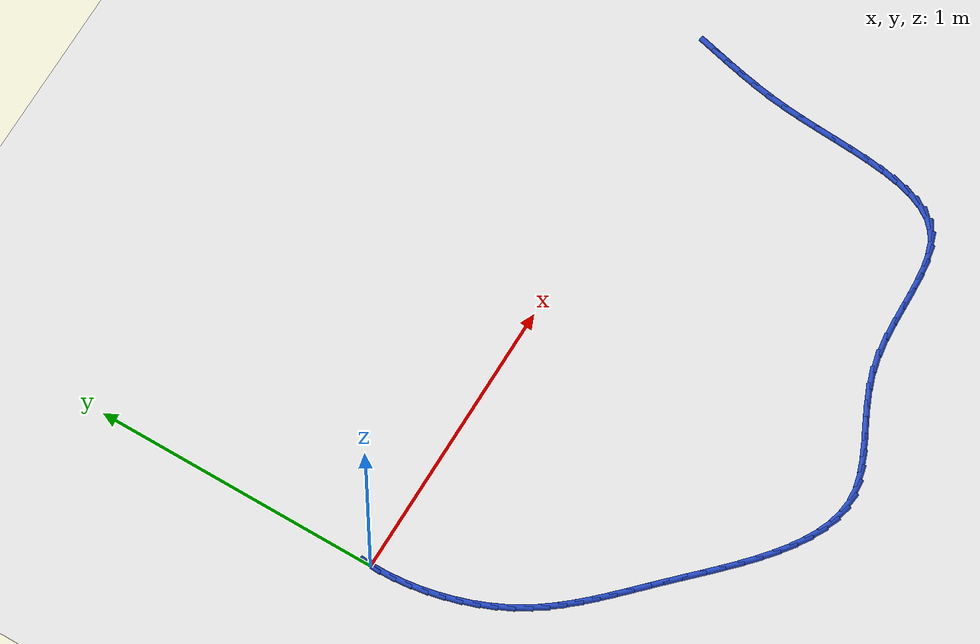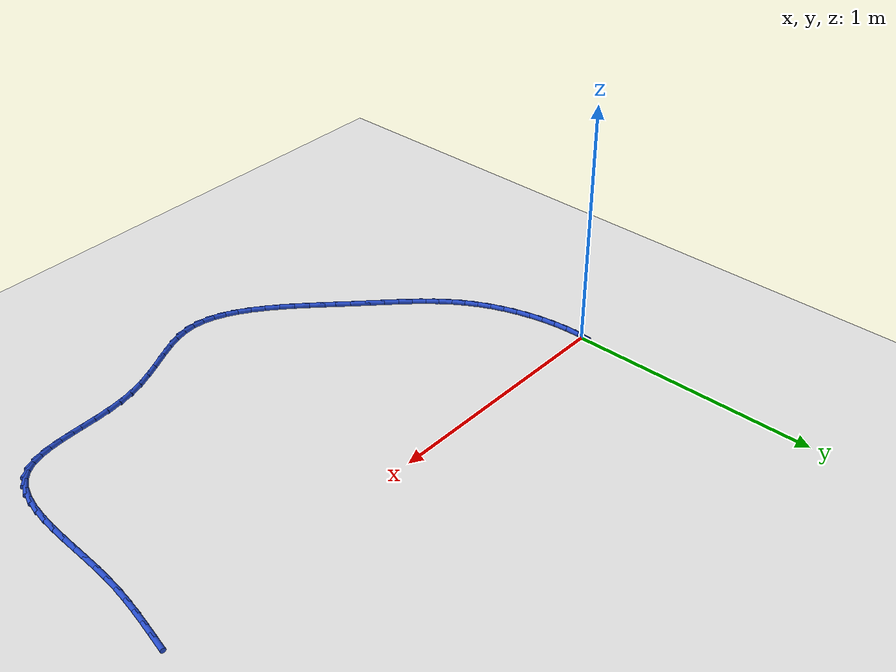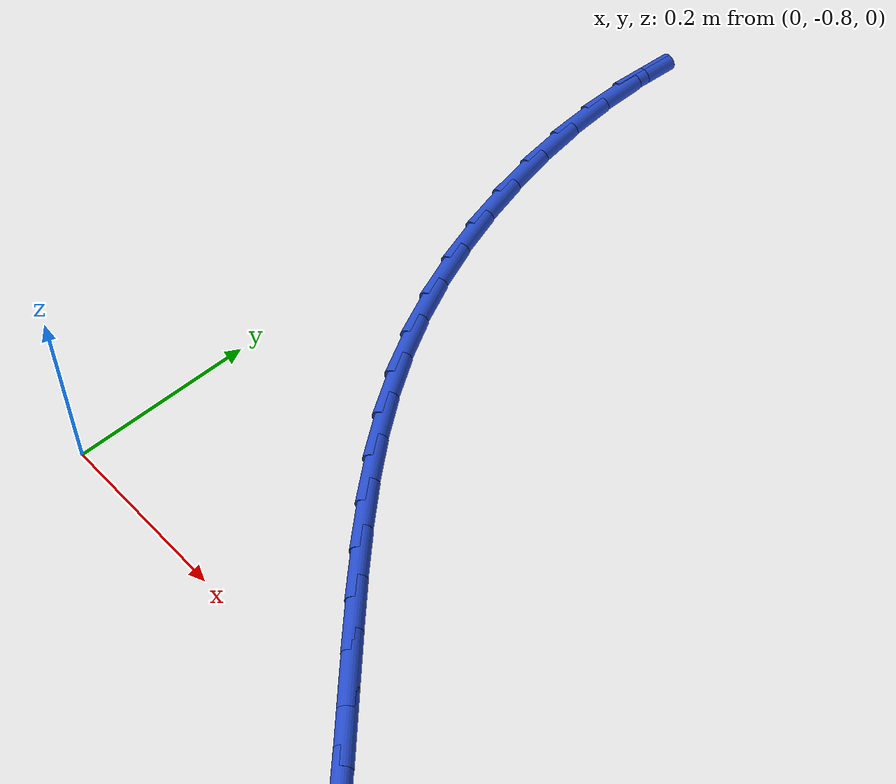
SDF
<sdf version="1.6">
 <world name="default">
  <model name="ground_plane">
   <static>1</static>
   <link name="link">
    <collision name="collision">
     <geometry><plane><normal>0 0 1</normal><size>100 100</size></plane></geometry>
     <surface><friction><ode><mu>100</mu><mu2>50</mu2></ode></friction></surface>
    </collision>
    <visual name="visual">
     <cast_shadows>0</cast_shadows>
     <geometry><plane><normal>0 0 1</normal><size>100 100</size></plane></geometry>
     <material>
      <script><uri>file://media/materials/scripts/gazebo.material</uri><name>Gazebo/WhiteGlow</name></script>
     </material>
    </visual>
   </link>
  </model>
  <model name="line">
   <link name="link_0">
    <pose>-3.469446951953614e-18 -1.1102230246251565e-16 0.01 0 1.57 1.5083237558012084</pose>
    <collision name="collision">
     <geometry><cylinder><radius>0.01</radius><length>0.08</length></cylinder></geometry>
    </collision>
    <visual name="visual">
     <material>
      <script><name>Gazebo/Blue</name><uri>file://media/materials/scripts/gazebo.material</uri></script>
     </material>
     <geometry><cylinder><radius>0.01</radius><length>0.08</length></cylinder></geometry>
    </visual>
   </link>
   <link name="link_66">
    <pose>2.0968382192380366 -0.0063056137642961765 0.01 0 1.57 1.3400797884857434</pose>
    <collision name="collision">
     <geometry><cylinder><radius>0.01</radius><length>0.08</length></cylinder></geometry>
    </collision>
    <visual name="visual">
     <material>
      <script><name>Gazebo/Blue</name><uri>file://media/materials/scripts/gazebo.material</uri></script>
     </material>
     <geometry><cylinder><radius>0.01</radius><length>0.08</length></cylinder></geometry>
    </visual>
   </link>
   <link name="link_67">
    <pose>2.084049963089782 -0.060747051341018196 0.01 0 1.57 1.3467853707199937</pose>
    <collision name="collision">
     <geometry><cylinder><radius>0.01</radius><length>0.08</length></cylinder></geometry>
    </collision>
    <visual name="visual">
     <material>
      <script><name>Gazebo/Blue</name><uri>file://media/materials/scripts/gazebo.material</uri></script>
     </material>
     <geometry><cylinder><radius>0.01</radius><length>0.08</length></cylinder></geometry>
    </visual>
   </link>
   <link name="link_68">
    <pose>2.071370664805585 -0.11639834334586663 0.01 0 1.57 1.3631032784898784</pose>
    <collision name="collision">
     <geometry><cylinder><radius>0.01</radius><length>0.08</length></cylinder></geometry>
    </collision>
    <visual name="visual">
     <material>
      <script><name>Gazebo/Blue</name><uri>file://media/materials/scripts/gazebo.material</uri></script>
     </material>
     <geometry><cylinder><radius>0.01</radius><length>0.08</length></cylinder></geometry>
    </visual>
   </link>
   <link name="link_69">
    <pose>2.0593467025145973 -0.1734564537996577 0.01 0 1.57 1.3883624178614888</pose>
    <collision name="collision">
     <geometry><cylinder><radius>0.01</radius><length>0.08</length></cylinder></geometry>
    </collision>
    <visual name="visual">
     <material>
      <script><name>Gazebo/Blue</name><uri>file://media/materials/scripts/gazebo.material</uri></script>
     </material>
     <geometry><cylinder><radius>0.01</radius><length>0.08</length></cylinder></geometry>
    </visual>
   </link>
   <link name="link_70">
    <pose>2.0485244543459693 -0.23211834672320728 0.01 0 1.57 1.421829386055727</pose>
    <collision name="collision">
     <geometry><cylinder><radius>0.01</radius><length>0.08</length></cylinder></geometry>
    </collision>
    <visual name="visual">
     <material>
      <script><name>Gazebo/Blue</name><uri>file://media/materials/scripts/gazebo.material</uri></script>
     </material>
     <geometry><cylinder><radius>0.01</radius><length>0.08</length></cylinder></geometry>
    </visual>
   </link>
   <link name="link_71">
    <pose>2.0394502984288554 -0.29258098613732914 0.01 0 1.57 1.4612700298648997</pose>
    <collision name="collision">
     <geometry><cylinder><radius>0.01</radius><length>0.08</length></cylinder></geometry>
    </collision>
    <visual name="visual">
     <material>
      <script><name>Gazebo/Blue</name><uri>file://media/materials/scripts/gazebo.material</uri></script>
     </material>
     <geometry><cylinder><radius>0.01</radius><length>0.08</length></cylinder></geometry>
    </visual>
   </link>
   <link name="link_72">
    <pose>2.032588858643657 -0.35497678857805803 0.01 0 1.57 1.4927425490563253</pose>
    <collision name="collision">
     <geometry><cylinder><radius>0.01</radius><length>0.08</length></cylinder></geometry>
    </collision>
    <visual name="visual">
     <material>
      <script><name>Gazebo/Blue</name><uri>file://media/materials/scripts/gazebo.material</uri></script>
     </material>
     <geometry><cylinder><radius>0.01</radius><length>0.08</length></cylinder></geometry>
    </visual>
   </link>
   <link name="link_73">
    <pose>2.0275970391784512 -0.4188004511314184 0.01 0 1.57 1.5098957581149568</pose>
    <collision name="collision">
     <geometry><cylinder><radius>0.01</radius><length>0.08</length></cylinder></geometry>
    </collision>
    <visual name="visual">
     <material>
      <script><name>Gazebo/Blue</name><uri>file://media/materials/scripts/gazebo.material</uri></script>
     </material>
     <geometry><cylinder><radius>0.01</radius><length>0.08</length></cylinder></geometry>
    </visual>
   </link>
   <link name="link_74">
    <pose>2.0236712450621086 -0.48318309268504717 0.01 0 1.57 1.5135962795925804</pose>
    <collision name="collision">
     <geometry><cylinder><radius>0.01</radius><length>0.08</length></cylinder></geometry>
    </collision>
    <visual name="visual">
     <material>
      <script><name>Gazebo/Blue</name><uri>file://media/materials/scripts/gazebo.material</uri></script>
     </material>
     <geometry><cylinder><radius>0.01</radius><length>0.08</length></cylinder></geometry>
    </visual>
   </link>
   <link name="link_75">
    <pose>2.0200025213651664 -0.5472516002752215 0.01 0 1.57 1.5037765643632066</pose>
    <collision name="collision">
     <geometry><cylinder><radius>0.01</radius><length>0.08</length></cylinder></geometry>
    </collision>
    <visual name="visual">
     <material>
      <script><name>Gazebo/Blue</name><uri>file://media/materials/scripts/gazebo.material</uri></script>
     </material>
     <geometry><cylinder><radius>0.01</radius><length>0.08</length></cylinder></geometry>
    </visual>
   </link>
   <link name="link_76">
    <pose>2.015781913158167 -0.6101328609382164 0.01 0 1.57 1.4792840625994632</pose>
    <collision name="collision">
     <geometry><cylinder><radius>0.01</radius><length>0.08</length></cylinder></geometry>
    </collision>
    <visual name="visual">
     <material>
      <script><name>Gazebo/Blue</name><uri>file://media/materials/scripts/gazebo.material</uri></script>
     </material>
     <geometry><cylinder><radius>0.01</radius><length>0.08</length></cylinder></geometry>
    </visual>
   </link>
   <link name="link_77">
    <pose>2.0102004655116503 -0.6709537617103095 0.01 0 1.57 1.4376861086203838</pose>
    <collision name="collision">
     <geometry><cylinder><radius>0.01</radius><length>0.08</length></cylinder></geometry>
    </collision>
    <visual name="visual">
     <material>
      <script><name>Gazebo/Blue</name><uri>file://media/materials/scripts/gazebo.material</uri></script>
     </material>
     <geometry><cylinder><radius>0.01</radius><length>0.08</length></cylinder></geometry>
    </visual>
   </link>
   <link name="link_78">
    <pose>2.0024492234961544 -0.728841189627778 0.01 0 1.57 1.3749334342237902</pose>
    <collision name="collision">
     <geometry><cylinder><radius>0.01</radius><length>0.08</length></cylinder></geometry>
    </collision>
    <visual name="visual">
     <material>
      <script><name>Gazebo/Blue</name><uri>file://media/materials/scripts/gazebo.material</uri></script>
     </material>
     <geometry><cylinder><radius>0.01</radius><length>0.08</length></cylinder></geometry>
    </visual>
   </link>
   <link name="link_79">
    <pose>1.9917192321822208 -0.7829220317268971 0.01 0 1.57 1.2849694473237803</pose>
    <collision name="collision">
     <geometry><cylinder><radius>0.01</radius><length>0.08</length></cylinder></geometry>
    </collision>
    <visual name="visual">
     <material>
      <script><name>Gazebo/Blue</name><uri>file://media/materials/scripts/gazebo.material</uri></script>
     </material>
     <geometry><cylinder><radius>0.01</radius><length>0.08</length></cylinder></geometry>
    </visual>
   </link>
   <link name="link_80">
    <pose>1.9772015366403886 -0.832323175043944 0.01 0 1.57 1.159713009865171</pose>
    <collision name="collision">
     <geometry><cylinder><radius>0.01</radius><length>0.08</length></cylinder></geometry>
    </collision>
    <visual name="visual">
     <material>
      <script><name>Gazebo/Blue</name><uri>file://media/materials/scripts/gazebo.material</uri></script>
     </material>
     <geometry><cylinder><radius>0.01</radius><length>0.08</length></cylinder></geometry>
    </visual>
   </link>
   <link name="link_81">
    <pose>1.9580871819411967 -0.8761715066151954 0.01 0 1.57 0.9907591489919769</pose>
    <collision name="collision">
     <geometry><cylinder><radius>0.01</radius><length>0.08</length></cylinder></geometry>
    </collision>
    <visual name="visual">
     <material>
      <script><name>Gazebo/Blue</name><uri>file://media/materials/scripts/gazebo.material</uri></script>
     </material>
     <geometry><cylinder><radius>0.01</radius><length>0.08</length></cylinder></geometry>
    </visual>
   </link>
   <link name="link_82">
    <pose>1.9335672131551862 -0.913593913476928 0.01 0 1.57 0.7753559503271344</pose>
    <collision name="collision">
     <geometry><cylinder><radius>0.01</radius><length>0.08</length></cylinder></geometry>
    </collision>
    <visual name="visual">
     <material>
      <script><name>Gazebo/Blue</name><uri>file://media/materials/scripts/gazebo.material</uri></script>
     </material>
     <geometry><cylinder><radius>0.01</radius><length>0.08</length></cylinder></geometry>
    </visual>
   </link>
   <link name="link_83">
    <pose>1.9028326753528968 -0.943717282665419 0.01 0 1.57 0.5318339207446283</pose>
    <collision name="collision">
     <geometry><cylinder><radius>0.01</radius><length>0.08</length></cylinder></geometry>
    </collision>
    <visual name="visual">
     <material>
      <script><name>Gazebo/Blue</name><uri>file://media/materials/scripts/gazebo.material</uri></script>
     </material>
     <geometry><cylinder><radius>0.01</radius><length>0.08</length></cylinder></geometry>
    </visual>
   </link>
   <link name="link_84">
    <pose>1.8652124869398827 -0.9658523683327074 0.01 0 1.57 0.32807058866458144</pose>
    <collision name="collision">
     <geometry><cylinder><radius>0.01</radius><length>0.08</length></cylinder></geometry>
    </collision>
    <visual name="visual">
     <material>
      <script><name>Gazebo/Blue</name><uri>file://media/materials/scripts/gazebo.material</uri></script>
     </material>
     <geometry><cylinder><radius>0.01</radius><length>0.08</length></cylinder></geometry>
    </visual>
   </link>
   <link name="link_85">
    <pose>1.8211821466580882 -0.9808389978154446 0.01 0 1.57 0.1887534705943668</pose>
    <collision name="collision">
     <geometry><cylinder><radius>0.01</radius><length>0.08</length></cylinder></geometry>
    </collision>
    <visual name="visual">
     <material>
      <script><name>Gazebo/Blue</name><uri>file://media/materials/scripts/gazebo.material</uri></script>
     </material>
     <geometry><cylinder><radius>0.01</radius><length>0.08</length></cylinder></geometry>
    </visual>
   </link>
   <link name="link_86">
    <pose>1.7717856139954409 -0.9902750945518793 0.01 0 1.57 0.1018333227901488</pose>
    <collision name="collision">
     <geometry><cylinder><radius>0.01</radius><length>0.08</length></cylinder></geometry>
    </collision>
    <visual name="visual">
     <material>
      <script><name>Gazebo/Blue</name><uri>file://media/materials/scripts/gazebo.material</uri></script>
     </material>
     <geometry><cylinder><radius>0.01</radius><length>0.08</length></cylinder></geometry>
    </visual>
   </link>
   <link name="link_87">
    <pose>1.7180709305309871 -0.995764025834361 0.01 0 1.57 0.05513655865592402</pose>
    <collision name="collision">
     <geometry><cylinder><radius>0.01</radius><length>0.08</length></cylinder></geometry>
    </collision>
    <visual name="visual">
     <material>
      <script><name>Gazebo/Blue</name><uri>file://media/materials/scripts/gazebo.material</uri></script>
     </material>
     <geometry><cylinder><radius>0.01</radius><length>0.08</length></cylinder></geometry>
    </visual>
   </link>
   <link name="link_88">
    <pose>1.6610861378437753 -0.9989091589552412 0.01 0 1.57 0.04059295291197634</pose>
    <collision name="collision">
     <geometry><cylinder><radius>0.01</radius><length>0.08</length></cylinder></geometry>
    </collision>
    <visual name="visual">
     <material>
      <script><name>Gazebo/Blue</name><uri>file://media/materials/scripts/gazebo.material</uri></script>
     </material>
     <geometry><cylinder><radius>0.01</radius><length>0.08</length></cylinder></geometry>
    </visual>
   </link>
   <link name="link_89">
    <pose>1.601879277512851 -1.0013138612068697 0.01 0 1.57 0.054064365862303475</pose>
    <collision name="collision">
     <geometry><cylinder><radius>0.01</radius><length>0.08</length></cylinder></geometry>
    </collision>
    <visual name="visual">
     <material>
      <script><name>Gazebo/Blue</name><uri>file://media/materials/scripts/gazebo.material</uri></script>
     </material>
     <geometry><cylinder><radius>0.01</radius><length>0.08</length></cylinder></geometry>
    </visual>
   </link>
   <link name="link_90">
    <pose>1.5414983911172613 -1.0045814998815976 0.01 0 1.57 0.09448298641544406</pose>
    <collision name="collision">
     <geometry><cylinder><radius>0.01</radius><length>0.08</length></cylinder></geometry>
    </collision>
    <visual name="visual">
     <material>
      <script><name>Gazebo/Blue</name><uri>file://media/materials/scripts/gazebo.material</uri></script>
     </material>
     <geometry><cylinder><radius>0.01</radius><length>0.08</length></cylinder></geometry>
    </visual>
   </link>
   <link name="link_91">
    <pose>1.4809915202360522 -1.0103154422717757 0.01 0 1.57 0.16307106690599815</pose>
    <collision name="collision">
     <geometry><cylinder><radius>0.01</radius><length>0.08</length></cylinder></geometry>
    </collision>
    <visual name="visual">
     <material>
      <script><name>Gazebo/Blue</name><uri>file://media/materials/scripts/gazebo.material</uri></script>
     </material>
     <geometry><cylinder><radius>0.01</radius><length>0.08</length></cylinder></geometry>
    </visual>
   </link>
   <link name="link_92">
    <pose>1.4214067064482718 -1.0201190556697537 0.01 0 1.57 0.2604371051522884</pose>
    <collision name="collision">
     <geometry><cylinder><radius>0.01</radius><length>0.08</length></cylinder></geometry>
    </collision>
    <visual name="visual">
     <material>
      <script><name>Gazebo/Blue</name><uri>file://media/materials/scripts/gazebo.material</uri></script>
     </material>
     <geometry><cylinder><radius>0.01</radius><length>0.08</length></cylinder></geometry>
    </visual>
   </link>
   <link name="link_93">
    <pose>1.3637497401764656 -1.035484039518276 0.01 0 1.57 0.35538499424757636</pose>
    <collision name="collision">
     <geometry><cylinder><radius>0.01</radius><length>0.08</length></cylinder></geometry>
    </collision>
    <visual name="visual">
     <material>
      <script><name>Gazebo/Blue</name><uri>file://media/materials/scripts/gazebo.material</uri></script>
     </material>
     <geometry><cylinder><radius>0.01</radius><length>0.08</length></cylinder></geometry>
    </visual>
   </link>
   <link name="link_94">
    <pose>1.3083270752157479 -1.0560537789463011 0.01 0 1.57 0.42040727044456616</pose>
    <collision name="collision">
     <geometry><cylinder><radius>0.01</radius><length>0.08</length></cylinder></geometry>
    </collision>
    <visual name="visual">
     <material>
      <script><name>Gazebo/Blue</name><uri>file://media/materials/scripts/gazebo.material</uri></script>
     </material>
     <geometry><cylinder><radius>0.01</radius><length>0.08</length></cylinder></geometry>
    </visual>
   </link>
   <link name="link_95">
    <pose>1.2548702703967234 -1.0799522383200837 0.01 0 1.57 0.45461197287517047</pose>
    <collision name="collision">
     <geometry><cylinder><radius>0.01</radius><length>0.08</length></cylinder></geometry>
    </collision>
    <visual name="visual">
     <material>
      <script><name>Gazebo/Blue</name><uri>file://media/materials/scripts/gazebo.material</uri></script>
     </material>
     <geometry><cylinder><radius>0.01</radius><length>0.08</length></cylinder></geometry>
    </visual>
   </link>
   <link name="link_96">
    <pose>1.2030938216596276 -1.105258285576976 0.01 0 1.57 0.4573031746639075</pose>
    <collision name="collision">
     <geometry><cylinder><radius>0.01</radius><length>0.08</length></cylinder></geometry>
    </collision>
    <visual name="visual">
     <material>
      <script><name>Gazebo/Blue</name><uri>file://media/materials/scripts/gazebo.material</uri></script>
     </material>
     <geometry><cylinder><radius>0.01</radius><length>0.08</length></cylinder></geometry>
    </visual>
   </link>
   <link name="link_97">
    <pose>1.152712224944697 -1.1300507886543298 0.01 0 1.57 0.4259772040404072</pose>
    <collision name="collision">
     <geometry><cylinder><radius>0.01</radius><length>0.08</length></cylinder></geometry>
    </collision>
    <visual name="visual">
     <material>
      <script><name>Gazebo/Blue</name><uri>file://media/materials/scripts/gazebo.material</uri></script>
     </material>
     <geometry><cylinder><radius>0.01</radius><length>0.08</length></cylinder></geometry>
    </visual>
   </link>
   <link name="link_98">
    <pose>1.103439976192168 -1.1524086154894981 0.01 0 1.57 0.35576097263506795</pose>
    <collision name="collision">
     <geometry><cylinder><radius>0.01</radius><length>0.08</length></cylinder></geometry>
    </collision>
    <visual name="visual">
     <material>
      <script><name>Gazebo/Blue</name><uri>file://media/materials/scripts/gazebo.material</uri></script>
     </material>
     <geometry><cylinder><radius>0.01</radius><length>0.08</length></cylinder></geometry>
    </visual>
   </link>
   <link name="link_99">
    <pose>1.0549915713422764 -1.1704106340198324 0.01 0 1.57 0.24001349026707933</pose>
    <collision name="collision">
     <geometry><cylinder><radius>0.01</radius><length>0.08</length></cylinder></geometry>
    </collision>
    <visual name="visual">
     <material>
      <script><name>Gazebo/Blue</name><uri>file://media/materials/scripts/gazebo.material</uri></script>
     </material>
     <geometry><cylinder><radius>0.01</radius><length>0.08</length></cylinder></geometry>
    </visual>
   </link>
   <link name="link_100">
    <pose>1.0070815063352598 -1.1821357121826843 0.01 0 1.57 0.07491904395450842</pose>
    <collision name="collision">
     <geometry><cylinder><radius>0.01</radius><length>0.08</length></cylinder></geometry>
    </collision>
    <visual name="visual">
     <material>
      <script><name>Gazebo/Blue</name><uri>file://media/materials/scripts/gazebo.material</uri></script>
     </material>
     <geometry><cylinder><radius>0.01</radius><length>0.08</length></cylinder></geometry>
    </visual>
   </link>
   <link name="link_101">
    <pose>0.9594301976330925 -1.1857123969933077 0.01 0 1.57 -0.10769620269221306</pose>
    <collision name="collision">
     <geometry><cylinder><radius>0.01</radius><length>0.08</length></cylinder></geometry>
    </collision>
    <visual name="visual">
     <material>
      <script><name>Gazebo/Blue</name><uri>file://media/materials/scripts/gazebo.material</uri></script>
     </material>
     <geometry><cylinder><radius>0.01</radius><length>0.08</length></cylinder></geometry>
    </visual>
   </link>
   <link name="link_102">
    <pose>0.9119136973451972 -1.1805751736589067 0.01 0 1.57 -0.26826637984170565</pose>
    <collision name="collision">
     <geometry><cylinder><radius>0.01</radius><length>0.08</length></cylinder></geometry>
    </collision>
    <visual name="visual">
     <material>
      <script><name>Gazebo/Blue</name><uri>file://media/materials/scripts/gazebo.material</uri></script>
     </material>
     <geometry><cylinder><radius>0.01</radius><length>0.08</length></cylinder></geometry>
    </visual>
   </link>
   <link name="link_103">
    <pose>0.8645753418334193 -1.1675622089835738 0.01 0 1.57 -0.4011533159310624</pose>
    <collision name="collision">
     <geometry><cylinder><radius>0.01</radius><length>0.08</length></cylinder></geometry>
    </collision>
    <visual name="visual">
     <material>
      <script><name>Gazebo/Blue</name><uri>file://media/materials/scripts/gazebo.material</uri></script>
     </material>
     <geometry><cylinder><radius>0.01</radius><length>0.08</length></cylinder></geometry>
    </visual>
   </link>
   <link name="link_104">
    <pose>0.8174667215075974 -1.1475809294602592 0.01 0 1.57 -0.5075390634047062</pose>
    <collision name="collision">
     <geometry><cylinder><radius>0.01</radius><length>0.08</length></cylinder></geometry>
    </collision>
    <visual name="visual">
     <material>
      <script><name>Gazebo/Blue</name><uri>file://media/materials/scripts/gazebo.material</uri></script>
     </material>
     <geometry><cylinder><radius>0.01</radius><length>0.08</length></cylinder></geometry>
    </visual>
   </link>
   <link name="link_105">
    <pose>0.7706394267775717 -1.1215387615819128 0.01 0 1.57 -0.5909654855926053</pose>
    <collision name="collision">
     <geometry><cylinder><radius>0.01</radius><length>0.08</length></cylinder></geometry>
    </collision>
    <visual name="visual">
     <material>
      <script><name>Gazebo/Blue</name><uri>file://media/materials/scripts/gazebo.material</uri></script>
     </material>
     <geometry><cylinder><radius>0.01</radius><length>0.08</length></cylinder></geometry>
    </visual>
   </link>
   <link name="link_106">
    <pose>0.724145048053182 -1.090343131841485 0.01 0 1.57 -0.6553212712346865</pose>
    <collision name="collision">
     <geometry><cylinder><radius>0.01</radius><length>0.08</length></cylinder></geometry>
    </collision>
    <visual name="visual">
     <material>
      <script><name>Gazebo/Blue</name><uri>file://media/materials/scripts/gazebo.material</uri></script>
     </material>
     <geometry><cylinder><radius>0.01</radius><length>0.08</length></cylinder></geometry>
    </visual>
   </link>
   <link name="link_107">
    <pose>0.678035175744268 -1.054901466731925 0.01 0 1.57 -0.7039544306514025</pose>
    <collision name="collision">
     <geometry><cylinder><radius>0.01</radius><length>0.08</length></cylinder></geometry>
    </collision>
    <visual name="visual">
     <material>
      <script><name>Gazebo/Blue</name><uri>file://media/materials/scripts/gazebo.material</uri></script>
     </material>
     <geometry><cylinder><radius>0.01</radius><length>0.08</length></cylinder></geometry>
    </visual>
   </link>
   <link name="link_108">
    <pose>0.6323614002606707 -1.0161211927461848 0.01 0 1.57 -0.7394265848610871</pose>
    <collision name="collision">
     <geometry><cylinder><radius>0.01</radius><length>0.08</length></cylinder></geometry>
    </collision>
    <visual name="visual">
     <material>
      <script><name>Gazebo/Blue</name><uri>file://media/materials/scripts/gazebo.material</uri></script>
     </material>
     <geometry><cylinder><radius>0.01</radius><length>0.08</length></cylinder></geometry>
    </visual>
   </link>
   <link name="link_109">
    <pose>0.5871753120122298 -0.974909736377214 0.01 0 1.57 -0.7635253179079369</pose>
    <collision name="collision">
     <geometry><cylinder><radius>0.01</radius><length>0.08</length></cylinder></geometry>
    </collision>
    <visual name="visual">
     <material>
      <script><name>Gazebo/Blue</name><uri>file://media/materials/scripts/gazebo.material</uri></script>
     </material>
     <geometry><cylinder><radius>0.01</radius><length>0.08</length></cylinder></geometry>
    </visual>
   </link>
   <link name="link_110">
    <pose>0.5425285014087845 -0.9321745241179618 0.01 0 1.57 -0.777339521165249</pose>
    <collision name="collision">
     <geometry><cylinder><radius>0.01</radius><length>0.08</length></cylinder></geometry>
    </collision>
    <visual name="visual">
     <material>
      <script><name>Gazebo/Blue</name><uri>file://media/materials/scripts/gazebo.material</uri></script>
     </material>
     <geometry><cylinder><radius>0.01</radius><length>0.08</length></cylinder></geometry>
    </visual>
   </link>
   <link name="link_111">
    <pose>0.49847255886017605 -0.8888229824613795 0.01 0 1.57 -0.7813155738000188</pose>
    <collision name="collision">
     <geometry><cylinder><radius>0.01</radius><length>0.08</length></cylinder></geometry>
    </collision>
    <visual name="visual">
     <material>
      <script><name>Gazebo/Blue</name><uri>file://media/materials/scripts/gazebo.material</uri></script>
     </material>
     <geometry><cylinder><radius>0.01</radius><length>0.08</length></cylinder></geometry>
    </visual>
   </link>
   <link name="link_112">
    <pose>0.4550590747762436 -0.8457625379004169 0.01 0 1.57 -0.7755755536161385</pose>
    <collision name="collision">
     <geometry><cylinder><radius>0.01</radius><length>0.08</length></cylinder></geometry>
    </collision>
    <visual name="visual">
     <material>
      <script><name>Gazebo/Blue</name><uri>file://media/materials/scripts/gazebo.material</uri></script>
     </material>
     <geometry><cylinder><radius>0.01</radius><length>0.08</length></cylinder></geometry>
    </visual>
   </link>
   <link name="link_113">
    <pose>0.4123428901260681 -0.803877385894389 0.01 0 1.57 -0.7683908515167889</pose>
    <collision name="collision">
     <geometry><cylinder><radius>0.01</radius><length>0.08</length></cylinder></geometry>
    </collision>
    <visual name="visual">
     <material>
      <script><name>Gazebo/Blue</name><uri>file://media/materials/scripts/gazebo.material</uri></script>
     </material>
     <geometry><cylinder><radius>0.01</radius><length>0.08</length></cylinder></geometry>
    </visual>
   </link>
   <link name="link_114">
    <pose>0.37046940376060766 -0.7634045245915339 0.01 0 1.57 -0.7699050942522171</pose>
    <collision name="collision">
     <geometry><cylinder><radius>0.01</radius><length>0.08</length></cylinder></geometry>
    </collision>
    <visual name="visual">
     <material>
      <script><name>Gazebo/Blue</name><uri>file://media/materials/scripts/gazebo.material</uri></script>
     </material>
     <geometry><cylinder><radius>0.01</radius><length>0.08</length></cylinder></geometry>
    </visual>
   </link>
   <link name="link_115">
    <pose>0.32968432749236054 -0.7238640374151841 0.01 0 1.57 -0.7813191175701663</pose>
    <collision name="collision">
     <geometry><cylinder><radius>0.01</radius><length>0.08</length></cylinder></geometry>
    </collision>
    <visual name="visual">
     <material>
      <script><name>Gazebo/Blue</name><uri>file://media/materials/scripts/gazebo.material</uri></script>
     </material>
     <geometry><cylinder><radius>0.01</radius><length>0.08</length></cylinder></geometry>
    </visual>
   </link>
   <link name="link_116">
    <pose>0.2902385811125544 -0.6847387875074711 0.01 0 1.57 -0.8031908588414266</pose>
    <collision name="collision">
     <geometry><cylinder><radius>0.01</radius><length>0.08</length></cylinder></geometry>
    </collision>
    <visual name="visual">
     <material>
      <script><name>Gazebo/Blue</name><uri>file://media/materials/scripts/gazebo.material</uri></script>
     </material>
     <geometry><cylinder><radius>0.01</radius><length>0.08</length></cylinder></geometry>
    </visual>
   </link>
   <link name="link_117">
    <pose>0.25238308441241497 -0.6455116380105234 0.01 0 1.57 -0.8358671702615817</pose>
    <collision name="collision">
     <geometry><cylinder><radius>0.01</radius><length>0.08</length></cylinder></geometry>
    </collision>
    <visual name="visual">
     <material>
      <script><name>Gazebo/Blue</name><uri>file://media/materials/scripts/gazebo.material</uri></script>
     </material>
     <geometry><cylinder><radius>0.01</radius><length>0.08</length></cylinder></geometry>
    </visual>
   </link>
   <link name="link_118">
    <pose>0.21636875718316792 -0.60566545206647 0.01 0 1.57 -0.8793753686585567</pose>
    <collision name="collision">
     <geometry><cylinder><radius>0.01</radius><length>0.08</length></cylinder></geometry>
    </collision>
    <visual name="visual">
     <material>
      <script><name>Gazebo/Blue</name><uri>file://media/materials/scripts/gazebo.material</uri></script>
     </material>
     <geometry><cylinder><radius>0.01</radius><length>0.08</length></cylinder></geometry>
    </visual>
   </link>
   <link name="link_119">
    <pose>0.18244651921604094 -0.5646830928174428 0.01 0 1.57 -0.933289154045648</pose>
    <collision name="collision">
     <geometry><cylinder><radius>0.01</radius><length>0.08</length></cylinder></geometry>
    </collision>
    <visual name="visual">
     <material>
      <script><name>Gazebo/Blue</name><uri>file://media/materials/scripts/gazebo.material</uri></script>
     </material>
     <geometry><cylinder><radius>0.01</radius><length>0.08</length></cylinder></geometry>
    </visual>
   </link>
   <link name="link_120">
    <pose>0.15086729030225957 -0.5220474234055702 0.01 0 1.57 -0.9965999417811187</pose>
    <collision name="collision">
     <geometry><cylinder><radius>0.01</radius><length>0.08</length></cylinder></geometry>
    </collision>
    <visual name="visual">
     <material>
      <script><name>Gazebo/Blue</name><uri>file://media/materials/scripts/gazebo.material</uri></script>
     </material>
     <geometry><cylinder><radius>0.01</radius><length>0.08</length></cylinder></geometry>
    </visual>
   </link>
   <link name="link_121">
    <pose>0.1218819902330503 -0.4772413069729821 0.01 0 1.57 -1.0668977689478254</pose>
    <collision name="collision">
     <geometry><cylinder><radius>0.01</radius><length>0.08</length></cylinder></geometry>
    </collision>
    <visual name="visual">
     <material>
      <script><name>Gazebo/Blue</name><uri>file://media/materials/scripts/gazebo.material</uri></script>
     </material>
     <geometry><cylinder><radius>0.01</radius><length>0.08</length></cylinder></geometry>
    </visual>
   </link>
   <link name="link_122">
    <pose>0.095730329287537 -0.42981144066958776 0.01 0 1.57 -1.1359872293828241</pose>
    <collision name="collision">
     <geometry><cylinder><radius>0.01</radius><length>0.08</length></cylinder></geometry>
    </collision>
    <visual name="visual">
     <material>
      <script><name>Gazebo/Blue</name><uri>file://media/materials/scripts/gazebo.material</uri></script>
     </material>
     <geometry><cylinder><radius>0.01</radius><length>0.08</length></cylinder></geometry>
    </visual>
   </link>
   <link name="link_123">
    <pose>0.07254780172793406 -0.37989799315175526 0.01 0 1.57 -1.2009460214060717</pose>
    <collision name="collision">
     <geometry><cylinder><radius>0.01</radius><length>0.08</length></cylinder></geometry>
    </collision>
    <visual name="visual">
     <material>
      <script><name>Gazebo/Blue</name><uri>file://media/materials/scripts/gazebo.material</uri></script>
     </material>
     <geometry><cylinder><radius>0.01</radius><length>0.08</length></cylinder></geometry>
    </visual>
   </link>
   <link name="link_124">
    <pose>0.052413285229225344 -0.3279635435105601 0.01 0 1.57 -1.262934485075588</pose>
    <collision name="collision">
     <geometry><cylinder><radius>0.01</radius><length>0.08</length></cylinder></geometry>
    </collision>
    <visual name="visual">
     <material>
      <script><name>Gazebo/Blue</name><uri>file://media/materials/scripts/gazebo.material</uri></script>
     </material>
     <geometry><cylinder><radius>0.01</radius><length>0.08</length></cylinder></geometry>
    </visual>
   </link>
   <link name="link_125">
    <pose>0.03540509374648648 -0.2744738810125595 0.01 0 1.57 -1.3230814812807883</pose>
    <collision name="collision">
     <geometry><cylinder><radius>0.01</radius><length>0.08</length></cylinder></geometry>
    </collision>
    <visual name="visual">
     <material>
      <script><name>Gazebo/Blue</name><uri>file://media/materials/scripts/gazebo.material</uri></script>
     </material>
     <geometry><cylinder><radius>0.01</radius><length>0.08</length></cylinder></geometry>
    </visual>
   </link>
   <link name="link_126">
    <pose>0.02160154123479327 -0.21989479492431047 0.01 0 1.57 -1.3824735098741419</pose>
    <collision name="collision">
     <geometry><cylinder><radius>0.01</radius><length>0.08</length></cylinder></geometry>
    </collision>
    <visual name="visual">
     <material>
      <script><name>Gazebo/Blue</name><uri>file://media/materials/scripts/gazebo.material</uri></script>
     </material>
     <geometry><cylinder><radius>0.01</radius><length>0.08</length></cylinder></geometry>
    </visual>
   </link>
   <link name="link_127">
    <pose>0.01108094164922216 -0.16469207451237255 0.01 0 1.57 -1.4421882253628153</pose>
    <collision name="collision">
     <geometry><cylinder><radius>0.01</radius><length>0.08</length></cylinder></geometry>
    </collision>
    <visual name="visual">
     <material>
      <script><name>Gazebo/Blue</name><uri>file://media/materials/scripts/gazebo.material</uri></script>
     </material>
     <geometry><cylinder><radius>0.01</radius><length>0.08</length></cylinder></geometry>
    </visual>
   </link>
   <link name="link_128">
    <pose>0.003921608944848899 -0.10933150904330291 0.01 0 1.57 -1.5033316609929597</pose>
    <collision name="collision">
     <geometry><cylinder><radius>0.01</radius><length>0.08</length></cylinder></geometry>
    </collision>
    <visual name="visual">
     <material>
      <script><name>Gazebo/Blue</name><uri>file://media/materials/scripts/gazebo.material</uri></script>
     </material>
     <geometry><cylinder><radius>0.01</radius><length>0.08</length></cylinder></geometry>
    </visual>
   </link>
   <link name="link_129">
    <pose>0.0002018570767495058 -0.05427888778365955 0.01 0 1.57 -1.5670774564489842</pose>
    <collision name="collision">
     <geometry><cylinder><radius>0.01</radius><length>0.08</length></cylinder></geometry>
    </collision>
    <visual name="visual">
     <material>
      <script><name>Gazebo/Blue</name><uri>file://media/materials/scripts/gazebo.material</uri></script>
     </material>
     <geometry><cylinder><radius>0.01</radius><length>0.08</length></cylinder></geometry>
    </visual>
   </link>
   <link name="link_130">
    <pose>-1.0408340855860843e-17 -2.636779683484747e-16 0.01 0 1.57 1.5068866427791594</pose>
    <collision name="collision">
     <geometry><cylinder><radius>0.01</radius><length>0.08</length></cylinder></geometry>
    </collision>
    <visual name="visual">
     <material>
      <script><name>Gazebo/Blue</name><uri>file://media/materials/scripts/gazebo.material</uri></script>
     </material>
     <geometry><cylinder><radius>0.01</radius><length>0.08</length></cylinder></geometry>
    </visual>
   </link>
  </model>
 </world>
</sdf>
